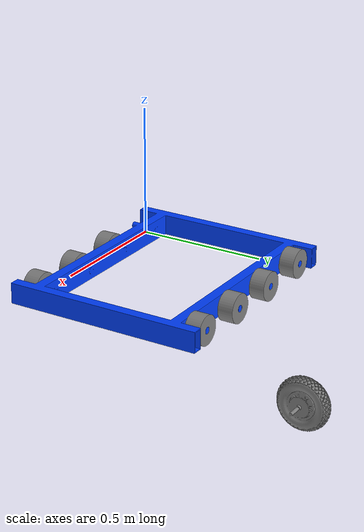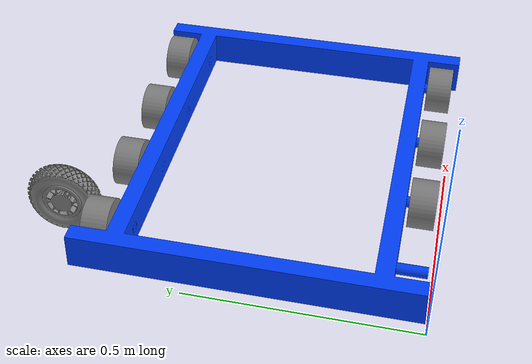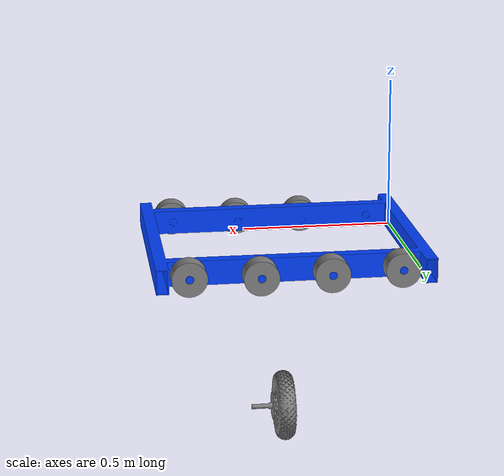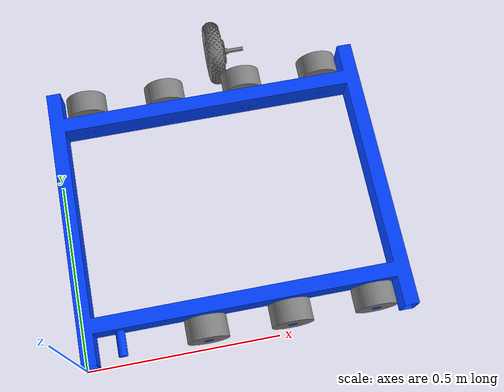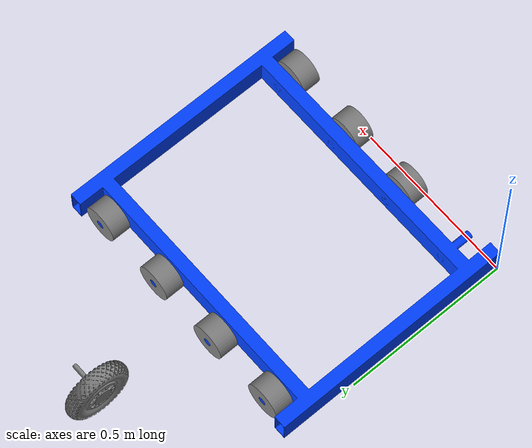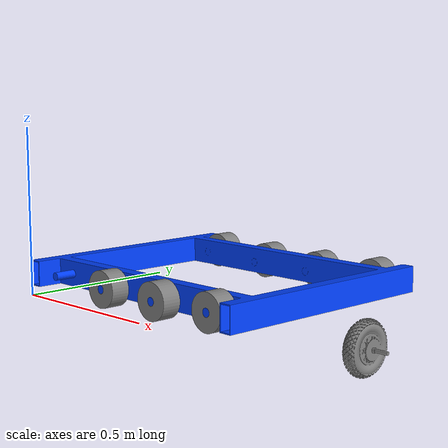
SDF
<?xml version="1.0" encoding="utf-8"?>
<sdf version="1.5">
  <model name="Tank2017">
    <pose>0 0 0.03 0 0 0</pose>
    <plugin name="clock" filename="libgz_clock.so">
      <topic>/gazebo/frc/time</topic>
    </plugin>
    <link name="Chassis">
      <gravity>1</gravity>
      <self_collide>0</self_collide>
      <pose>0.425449999999999 0.3683 0.0376566951243428 1.5707963267949 0 -1.5707963267949</pose>
      <must_be_base_link>1</must_be_base_link>
      <velocity_decay>
        <linear>0</linear>
        <angular>0</angular>
      </velocity_decay>
      <inertial>
        <mass>2.40817781994212</mass>
        <pose>0 0 0 0 0 0</pose>
        <inertia>
          <ixx>0.241291454428431</ixx>
          <ixy>7.55045169182483E-18</ixy>
          <ixz>4.33680868994202E-18</ixz>
          <iyy>0.396867274360816</iyy>
          <iyz>2.74353971615668E-18</iyz>
          <izz>0.158653242485737</izz>
        </inertia>
      </inertial>
      <collision name="Chassis_collision">
        <pose>-0.012550161129536 -0.451315668830974 -0.564278846984316 0 0 0</pose>
        <geometry>
          <mesh>
            <scale>1 1 1</scale>
            <uri>model://Tank2017/meshes/Chassis_col.STL</uri>
          </mesh>
        </geometry>
        <surface>
          <contact>
            <ode />
          </contact>
          <friction>
            <ode>
              <mu>0.5</mu>
            </ode>
          </friction>
        </surface>
      </collision>
      <visual name="Chassis_visual">
        <pose>-0.012550161129536 -0.451315668830974 -0.564278846984316 0 0 0</pose>
        <material>
          <ambient>0 0.250980392156863 1 1</ambient>
          <diffuse>0 0.250980392156863 1 1</diffuse>
        </material>
        <geometry>
          <mesh>
            <scale>1 1 1</scale>
            <uri>model://Tank2017/meshes/Chassis.STL</uri>
          </mesh>
        </geometry>
      </visual>
      <sensor name="ChassisCamera" type="camera">
        <visualize>1</visualize>
        <always_on>1</always_on>
        <pose>0 0.1 -0.406399999999999 -1.57 1.57 0.0</pose>
        <update_rate>30.0</update_rate>
        <camera name="Chassiscamera">
          <horizontal_fov>1.0471975511966</horizontal_fov>
          <image>
            <width>320</width>
            <height>240</height>
          </image>
          <clip>
            <near>0.1</near>
            <far>100</far>
          </clip>
          <save enabled="true">
              <path>/tmp/driver-camera</path>
          </save>
        </camera>
      </sensor>
    </link>
    <link name="L1Wheel">
      <gravity>1</gravity>
      <self_collide>0</self_collide>
      <pose>0.1016 0.0412750000000001 0.0381 1.5707963267949 0 -1.5707963267949</pose>
      <must_be_base_link>0</must_be_base_link>
      <velocity_decay>
        <linear>0</linear>
        <angular>0</angular>
      </velocity_decay>
      <inertial>
        <mass>0.494101547094075</mass>
        <pose>0 0 0 0 0 0</pose>
        <inertia>
          <ixx>0.000759579992246719</ixx>
          <ixy>1.64529823070963E-36</ixy>
          <ixz>1.37155809984153E-20</ixz>
          <iyy>0.00051427301114409</iyy>
          <iyz>1.78378623796855E-38</iyz>
          <izz>0.00051427301114409</izz>
        </inertia>
      </inertial>
      <collision name="L1Wheel_collision">
        <pose>-0.339575161129536 -0.451758973706632 -0.888128846984316 0 0 0</pose>
        <geometry>
          <mesh>
            <scale>1 1 1</scale>
            <uri>model://Tank2017/meshes/L1Wheel_col.STL</uri>
          </mesh>
        </geometry>
        <surface>
          <friction>
            <ode>
              <mu>0.5</mu>
              <fdir1>1 0 0</fdir1>
            </ode>
          </friction>
		  <contact>
			<ode>
			  <max_vel>100</max_vel>
			  <soft_cfm>0.8</soft_cfm>
			  <soft_erp>0.8</soft_erp>
			  <kd>100</kd>
			  <kp>10000</kp>
			  <min_depth>0.002</min_depth>
			</ode>
		  </contact>
        </surface>
      </collision>
      <visual name="L1Wheel_visual">
        <pose>-0.339575161129536 -0.451758973706632 -0.888128846984316 0 0 0</pose>
        <material>
          <ambient>0.501960784313725 0.501960784313725 0.501960784313725 1</ambient>
          <diffuse>0.501960784313725 0.501960784313725 0.501960784313725 1</diffuse>
        </material>
        <geometry>
          <mesh>
            <scale>1 1 1</scale>
            <uri>model://Tank2017/meshes/L1Wheel.STL</uri>
          </mesh>
        </geometry>
      </visual>
    </link>
    <joint name="Chassis-L1Wheel" type="revolute">
      <parent>Chassis</parent>
      <child>L1Wheel</child>
      <pose>3.33066907387547E-16 0 -2.22044604925031E-16 0 0 0</pose>
      <axis>
        <xyz>1 0 0</xyz>
        <dynamics>
          <damping>1</damping>
          <friction>1</friction>
        </dynamics>
        <limit>
          <effort>100</effort>
        </limit>
      </axis>
    </joint>
    <link name="L2Wheel">
      <gravity>1</gravity>
      <self_collide>0</self_collide>
      <pose>0.3175 0.0412750000000001 0.0317499999999999 1.5707963267949 0 -1.5707963267949</pose>
      <must_be_base_link>0</must_be_base_link>
      <velocity_decay>
        <linear>0</linear>
        <angular>0</angular>
      </velocity_decay>
      <inertial>
        <mass>0.494101547094075</mass>
        <pose>0 0 0 0 0 0</pose>
        <inertia>
          <ixx>0.000759579992246719</ixx>
          <ixy>1.64529823070963E-36</ixy>
          <ixz>1.37155809984153E-20</ixz>
          <iyy>0.00051427301114409</iyy>
          <iyz>1.78378623796855E-38</iyz>
          <izz>0.00051427301114409</izz>
        </inertia>
      </inertial>
      <collision name="L2Wheel_collision">
        <pose>-0.339575161129536 -0.445408973706631 -0.672228846984316 0 0 0</pose>
        <geometry>
          <mesh>
            <scale>1 1 1</scale>
            <uri>model://Tank2017/meshes/L2Wheel_col.STL</uri>
          </mesh>
        </geometry>
        <surface>
          <friction>
            <ode>
              <mu>0.5</mu>
              <fdir1>1 0 0</fdir1>
            </ode>
          </friction>
		  <contact>
			<ode>
			  <max_vel>100</max_vel>
			  <soft_cfm>0.8</soft_cfm>
			  <soft_erp>0.8</soft_erp>
			  <kd>100</kd>
			  <kp>10000</kp>
			  <min_depth>0.002</min_depth>
			</ode>
		  </contact>
        </surface>
      </collision>
      <visual name="L2Wheel_visual">
        <pose>-0.339575161129536 -0.445408973706631 -0.672228846984316 0 0 0</pose>
        <material>
          <ambient>0.501960784313725 0.501960784313725 0.501960784313725 1</ambient>
          <diffuse>0.501960784313725 0.501960784313725 0.501960784313725 1</diffuse>
        </material>
        <geometry>
          <mesh>
            <scale>1 1 1</scale>
            <uri>model://Tank2017/meshes/L2Wheel.STL</uri>
          </mesh>
        </geometry>
      </visual>
    </link>
    <joint name="Chassis-L2Wheel" type="revolute">
      <parent>Chassis</parent>
      <child>L2Wheel</child>
      <pose>3.33066907387547E-16 5.55111512312578E-17 0 0 0 0</pose>
      <axis>
        <xyz>1 0 0</xyz>
        <dynamics>
          <damping>1</damping>
          <friction>1</friction>
        </dynamics>
        <limit>
          <effort>100</effort>
        </limit>
      </axis>
    </joint>
    <link name="L3Wheel">
      <gravity>1</gravity>
      <self_collide>0</self_collide>
      <pose>0.5334 0.0412750000000002 0.0317499999999998 1.5707963267949 0 -1.5707963267949</pose>
      <must_be_base_link>0</must_be_base_link>
      <velocity_decay>
        <linear>0</linear>
        <angular>0</angular>
      </velocity_decay>
      <inertial>
        <mass>0.494101547094075</mass>
        <pose>0 0 0 0 0 0</pose>
        <inertia>
          <ixx>0.000759579992246719</ixx>
          <ixy>1.64529823070963E-36</ixy>
          <ixz>1.37155809984153E-20</ixz>
          <iyy>0.00051427301114409</iyy>
          <iyz>1.78378623796855E-38</iyz>
          <izz>0.00051427301114409</izz>
        </inertia>
      </inertial>
      <collision name="L3Wheel_collision">
        <pose>-0.339575161129536 -0.445408973706631 -0.456328846984316 0 0 0</pose>
        <geometry>
          <mesh>
            <scale>1 1 1</scale>
            <uri>model://Tank2017/meshes/L3Wheel_col.STL</uri>
          </mesh>
        </geometry>
        <surface>
          <friction>
            <ode>
              <mu>0.5</mu>
              <fdir1>1 0 0</fdir1>
            </ode>
           </friction>
		  <contact>
			<ode>
			  <max_vel>100</max_vel>
			  <soft_cfm>0.8</soft_cfm>
			  <soft_erp>0.8</soft_erp>
			  <kd>100</kd>
			  <kp>10000</kp>
			  <min_depth>0.002</min_depth>
			</ode>
		  </contact>
        </surface>
      </collision>
      <visual name="L3Wheel_visual">
        <pose>-0.339575161129536 -0.445408973706631 -0.456328846984316 0 0 0</pose>
        <material>
          <ambient>0.501960784313725 0.501960784313725 0.501960784313725 1</ambient>
          <diffuse>0.501960784313725 0.501960784313725 0.501960784313725 1</diffuse>
        </material>
        <geometry>
          <mesh>
            <scale>1 1 1</scale>
            <uri>model://Tank2017/meshes/L3Wheel.STL</uri>
          </mesh>
        </geometry>
      </visual>
    </link>
    <joint name="Chassis-L3Wheel" type="revolute">
      <parent>Chassis</parent>
      <child>L3Wheel</child>
      <pose>3.33066907387547E-16 5.55111512312578E-17 -1.11022302462516E-16 0 0 0</pose>
      <axis>
        <xyz>1 0 0</xyz>
        <dynamics>
          <damping>1</damping>
          <friction>1</friction>
        </dynamics>
        <limit>
          <effort>100</effort>
        </limit>
      </axis>
    </joint>
    <link name="L4Wheel">
      <gravity>1</gravity>
      <self_collide>0</self_collide>
      <pose>0.7493 0.0412750000000002 0.0380999999999998 1.5707963267949 0 -1.5707963267949</pose>
      <must_be_base_link>0</must_be_base_link>
      <velocity_decay>
        <linear>0</linear>
        <angular>0</angular>
      </velocity_decay>
      <inertial>
        <mass>0.494101547094075</mass>
        <pose>0 0 0 0 0 0</pose>
        <inertia>
          <ixx>0.000759579992246719</ixx>
          <ixy>3.87913135771356E-35</ixy>
          <ixz>1.37155809984153E-20</ixz>
          <iyy>0.00051427301114409</iyy>
          <iyz>5.47393247872099E-35</iyz>
          <izz>0.00051427301114409</izz>
        </inertia>
      </inertial>
      <collision name="L4Wheel_collision">
        <pose>-0.339575161129536 -0.451758973706631 -0.240428846984316 0 0 0</pose>
        <geometry>
          <mesh>
            <scale>1 1 1</scale>
            <uri>model://Tank2017/meshes/L4Wheel_col.STL</uri>
          </mesh>
        </geometry>
        <surface>
          <friction>
            <ode>
              <mu>0.5</mu>
              <fdir1>1 0 0</fdir1>
            </ode>
          </friction>
		  <contact>
			<ode>
			  <max_vel>100</max_vel>
			  <soft_cfm>0.8</soft_cfm>
			  <soft_erp>0.8</soft_erp>
			  <kd>100</kd>
			  <kp>10000</kp>
			  <min_depth>0.002</min_depth>
			</ode>
		  </contact>
        </surface>
      </collision>
      <visual name="L4Wheel_visual">
        <pose>-0.339575161129536 -0.451758973706631 -0.240428846984316 0 0 0</pose>
        <material>
          <ambient>0.501960784313725 0.501960784313725 0.501960784313725 1</ambient>
          <diffuse>0.501960784313725 0.501960784313725 0.501960784313725 1</diffuse>
        </material>
        <geometry>
          <mesh>
            <scale>1 1 1</scale>
            <uri>model://Tank2017/meshes/L4Wheel.STL</uri>
          </mesh>
        </geometry>
      </visual>
    </link>
    <joint name="Chassis-L4Wheel" type="revolute">
      <parent>Chassis</parent>
      <child>L4Wheel</child>
      <pose>3.33066907387547E-16 0 2.77555756156289E-17 0 0 0</pose>
      <axis>
        <xyz>1 0 0</xyz>
        <dynamics>
          <damping>1</damping>
          <friction>1</friction>
        </dynamics>
        <limit>
          <effort>100</effort>
        </limit>
      </axis>
    </joint>
    <link name="R1Wheel">
      <gravity>1</gravity>
      <self_collide>0</self_collide>
      <pose>0.1016 0.695325 0.0381 1.5707963267949 0 -1.5707963267949</pose>
      <must_be_base_link>0</must_be_base_link>
      <velocity_decay>
        <linear>0</linear>
        <angular>0</angular>
      </velocity_decay>
      <inertial>
        <mass>0.494101547094075</mass>
        <pose>0 0 0 0 0 0</pose>
        <inertia>
          <ixx>0.000759579992246719</ixx>
          <ixy>1.64529823070963E-36</ixy>
          <ixz>1.37155809984153E-20</ixz>
          <iyy>0.00051427301114409</iyy>
          <iyz>1.78378623796855E-38</iyz>
          <izz>0.00051427301114409</izz>
        </inertia>
      </inertial>
      <collision name="R1Wheel_collision">
        <pose>0.314474838870464 -0.451758973706632 -0.888128846984315 0 0 0</pose>
        <geometry>
          <mesh>
            <scale>1 1 1</scale>
            <uri>model://Tank2017/meshes/R1Wheel_col.STL</uri>
          </mesh>
        </geometry>
        <surface>
          <friction>
            <ode>
              <mu>0.5</mu>
              <fdir1>1 0 0</fdir1>
            </ode>
          </friction>
		  <contact>
			<ode>
			  <max_vel>100</max_vel>
			  <soft_cfm>0.8</soft_cfm>
			  <soft_erp>0.8</soft_erp>
			  <kd>100</kd>
			  <kp>10000</kp>
			  <min_depth>0.002</min_depth>
			</ode>
		  </contact>
        </surface>
      </collision>
      <visual name="R1Wheel_visual">
        <pose>0.314474838870464 -0.451758973706632 -0.888128846984315 0 0 0</pose>
        <material>
          <ambient>0.501960784313725 0.501960784313725 0.501960784313725 1</ambient>
          <diffuse>0.501960784313725 0.501960784313725 0.501960784313725 1</diffuse>
        </material>
        <geometry>
          <mesh>
            <scale>1 1 1</scale>
            <uri>model://Tank2017/meshes/R1Wheel.STL</uri>
          </mesh>
        </geometry>
      </visual>
    </link>
    <joint name="Chassis-R1Wheel" type="revolute">
      <parent>Chassis</parent>
      <child>R1Wheel</child>
      <pose>2.77555756156289E-16 0 0 0 0 0</pose>
      <axis>
        <xyz>1 0 0</xyz>
        <dynamics>
          <damping>1</damping>
          <friction>1</friction>
        </dynamics>
        <limit>
          <effort>100</effort>
        </limit>
      </axis>
    </joint>
    <link name="R2Wheel">
      <gravity>1</gravity>
      <self_collide>0</self_collide>
      <pose>0.3175 0.695325 0.0317499999999999 1.5707963267949 0 -1.5707963267949</pose>
      <must_be_base_link>0</must_be_base_link>
      <velocity_decay>
        <linear>0</linear>
        <angular>0</angular>
      </velocity_decay>
      <inertial>
        <mass>0.494101547094075</mass>
        <pose>0 0 0 0 0 0</pose>
        <inertia>
          <ixx>0.000759579992246719</ixx>
          <ixy>1.64529823070963E-36</ixy>
          <ixz>1.37155809984153E-20</ixz>
          <iyy>0.00051427301114409</iyy>
          <iyz>1.78378623796825E-38</iyz>
          <izz>0.00051427301114409</izz>
        </inertia>
      </inertial>
      <collision name="R2Wheel_collision">
        <pose>0.314474838870464 -0.445408973706632 -0.672228846984316 0 0 0</pose>
        <geometry>
          <mesh>
            <scale>1 1 1</scale>
            <uri>model://Tank2017/meshes/R2Wheel_col.STL</uri>
          </mesh>
        </geometry>
        <surface>
          <friction>
            <ode>
              <mu>0.5</mu>
              <fdir1>1 0 0</fdir1>
            </ode>
          </friction>
		  <contact>
			<ode>
			  <max_vel>100</max_vel>
			  <soft_cfm>0.8</soft_cfm>
			  <soft_erp>0.8</soft_erp>
			  <kd>100</kd>
			  <kp>10000</kp>
			  <min_depth>0.002</min_depth>
			</ode>
		  </contact>
        </surface>
      </collision>
      <visual name="R2Wheel_visual">
        <pose>0.314474838870464 -0.445408973706632 -0.672228846984316 0 0 0</pose>
        <material>
          <ambient>0.501960784313725 0.501960784313725 0.501960784313725 1</ambient>
          <diffuse>0.501960784313725 0.501960784313725 0.501960784313725 1</diffuse>
        </material>
        <geometry>
          <mesh>
            <scale>1 1 1</scale>
            <uri>model://Tank2017/meshes/R2Wheel.STL</uri>
          </mesh>
        </geometry>
      </visual>
    </link>
    <joint name="Chassis-R2Wheel" type="revolute">
      <parent>Chassis</parent>
      <child>R2Wheel</child>
      <pose>3.33066907387547E-16 0 0 0 0 0</pose>
      <axis>
        <xyz>1 0 0</xyz>
        <dynamics>
          <damping>1</damping>
          <friction>1</friction>
        </dynamics>
        <limit>
          <effort>100</effort>
        </limit>
      </axis>
    </joint>
    <link name="R3Wheel">
      <gravity>1</gravity>
      <self_collide>0</self_collide>
      <pose>0.5334 0.695325 0.0317499999999998 1.5707963267949 0 -1.5707963267949</pose>
      <must_be_base_link>0</must_be_base_link>
      <velocity_decay>
        <linear>0</linear>
        <angular>0</angular>
      </velocity_decay>
      <inertial>
        <mass>0.494101547094075</mass>
        <pose>0 0 0 0 0 0</pose>
        <inertia>
          <ixx>0.000759579992246719</ixx>
          <ixy>1.64529823070963E-36</ixy>
          <ixz>1.37155809984153E-20</ixz>
          <iyy>0.00051427301114409</iyy>
          <iyz>1.78378623796825E-38</iyz>
          <izz>0.00051427301114409</izz>
        </inertia>
      </inertial>
      <collision name="R3Wheel_collision">
        <pose>0.314474838870464 -0.445408973706631 -0.456328846984316 0 0 0</pose>
        <geometry>
          <mesh>
            <scale>1 1 1</scale>
            <uri>model://Tank2017/meshes/R3Wheel_col.STL</uri>
          </mesh>
        </geometry>
        <surface>
          <friction>
            <ode>
              <mu>0.5</mu>
              <fdir1>1 0 0</fdir1>
            </ode>
          </friction>
		  <contact>
			<ode>
			  <max_vel>100</max_vel>
			  <soft_cfm>0.8</soft_cfm>
			  <soft_erp>0.8</soft_erp>
			  <kd>100</kd>
			  <kp>10000</kp>
			  <min_depth>0.002</min_depth>
			</ode>
		  </contact>
        </surface>
      </collision>
      <visual name="R3Wheel_visual">
        <pose>0.314474838870464 -0.445408973706631 -0.456328846984316 0 0 0</pose>
        <material>
          <ambient>0.501960784313725 0.501960784313725 0.501960784313725 1</ambient>
          <diffuse>0.501960784313725 0.501960784313725 0.501960784313725 1</diffuse>
        </material>
        <geometry>
          <mesh>
            <scale>1 1 1</scale>
            <uri>model://Tank2017/meshes/R3Wheel.STL</uri>
          </mesh>
        </geometry>
      </visual>
    </link>
    <joint name="Chassis-R3Wheel" type="revolute">
      <parent>Chassis</parent>
      <child>R3Wheel</child>
      <pose>2.77555756156289E-16 5.55111512312578E-17 0 0 0 0</pose>
      <axis>
        <xyz>1 0 0</xyz>
        <dynamics>
          <damping>1</damping>
          <friction>1</friction>
        </dynamics>
        <limit>
          <effort>100</effort>
        </limit>
      </axis>
    </joint>
    <link name="R4Wheel">
      <gravity>1</gravity>
      <self_collide>0</self_collide>
      <pose>0.7493 0.695325 0.0380999999999998 1.5707963267949 0 -1.5707963267949</pose>
      <must_be_base_link>0</must_be_base_link>
      <velocity_decay>
        <linear>0</linear>
        <angular>0</angular>
      </velocity_decay>
      <inertial>
        <mass>0.494101547094075</mass>
        <pose>0 0 0 0 0 0</pose>
        <inertia>
          <ixx>0.000759579992246719</ixx>
          <ixy>3.87913135771356E-35</ixy>
          <ixz>1.37155809984153E-20</ixz>
          <iyy>0.00051427301114409</iyy>
          <iyz>5.47393247872099E-35</iyz>
          <izz>0.00051427301114409</izz>
        </inertia>
      </inertial>
      <collision name="R4Wheel_collision">
        <pose>0.314474838870464 -0.451758973706631 -0.240428846984316 0 0 0</pose>
        <geometry>
          <mesh>
            <scale>1 1 1</scale>
            <uri>model://Tank2017/meshes/R4Wheel_col.STL</uri>
          </mesh>
        </geometry>
        <surface>
         <friction>
            <ode>
              <mu>0.5</mu>
              <fdir1>1 0 0</fdir1>
            </ode>
          </friction>
		  <contact>
			<ode>
			  <max_vel>100</max_vel>
			  <soft_cfm>0.8</soft_cfm>
			  <soft_erp>0.8</soft_erp>
			  <kd>100</kd>
			  <kp>10000</kp>
			  <min_depth>0.002</min_depth>
			</ode>
		  </contact>
        </surface>
      </collision>
      <visual name="R4Wheel_visual">
        <pose>0.314474838870464 -0.451758973706631 -0.240428846984316 0 0 0</pose>
        <material>
          <ambient>0.501960784313725 0.501960784313725 0.501960784313725 1</ambient>
          <diffuse>0.501960784313725 0.501960784313725 0.501960784313725 1</diffuse>
        </material>
        <geometry>
          <mesh>
            <scale>1 1 1</scale>
            <uri>model://Tank2017/meshes/R4Wheel.STL</uri>
          </mesh>
        </geometry>
      </visual>
    </link>
    <joint name="Chassis-R4Wheel" type="revolute">
      <parent>Chassis</parent>
      <child>R4Wheel</child>
      <pose>2.22044604925031E-16 0 2.77555756156289E-17 0 0 0</pose>
      <axis>
        <xyz>1 0 0</xyz>
        <dynamics>
          <damping>1</damping>
          <friction>1</friction>
        </dynamics>
        <limit>
          <effort>100</effort>
        </limit>
      </axis>
    </joint>
    <plugin name="Chassis_gyro" filename="libgyro.so">
      <link>Chassis</link>
      <topic>/gazebo/frc/simulator/analog/3</topic>
      <units>degrees</units>
      <axis>yaw</axis>
    </plugin>
    <plugin name="Chassis-L1Wheel_motor" filename="libgz_dc_motor.so">
      <joint>Chassis-L1Wheel</joint>
      <topic>/gazebo/frc/simulator/pwm/2</topic>
      <multiplier>50</multiplier>
    </plugin>
    <plugin name="Chassis-L2Wheel_motor" filename="libgz_dc_motor.so">
      <joint>Chassis-L2Wheel</joint>
      <topic>/gazebo/frc/simulator/pwm/2</topic>
      <multiplier>50</multiplier>
    </plugin>
    <plugin name="Chassis-L2Wheel_encoder" filename="libgz_encoder.so">
      <joint>Chassis-L2Wheel</joint>
      <topic>/gazebo/frc/simulator/dio/3/4</topic>
      <units>degrees</units>
    </plugin>
    <plugin name="Chassis-L3Wheel_motor" filename="libgz_dc_motor.so">
      <joint>Chassis-L3Wheel</joint>
      <topic>/gazebo/frc/simulator/pwm/2</topic>
      <multiplier>50</multiplier>
    </plugin>
    <plugin name="Chassis-L4Wheel_motor" filename="libgz_dc_motor.so">
      <joint>Chassis-L4Wheel</joint>
      <topic>/gazebo/frc/simulator/pwm/2</topic>
      <multiplier>50</multiplier>
    </plugin>
    <plugin name="Chassis-R1Wheel_motor" filename="libgz_dc_motor.so">
      <joint>Chassis-R1Wheel</joint>
      <topic>/gazebo/frc/simulator/pwm/4</topic>
      <multiplier>50</multiplier>
    </plugin>
    <plugin name="Chassis-R2Wheel_motor" filename="libgz_dc_motor.so">
      <joint>Chassis-R2Wheel</joint>
      <topic>/gazebo/frc/simulator/pwm/4</topic>
      <multiplier>50</multiplier>
    </plugin>
    <plugin name="Chassis-R2Wheel_encoder" filename="libgz_encoder.so">
      <joint>Chassis-R2Wheel</joint>
      <topic>/gazebo/frc/simulator/dio/7/8</topic>
      <units>degrees</units>
    </plugin>
    <plugin name="Chassis-R3Wheel_motor" filename="libgz_dc_motor.so">
      <joint>Chassis-R3Wheel</joint>
      <topic>/gazebo/frc/simulator/pwm/4</topic>
      <multiplier>50</multiplier>
    </plugin>
    <plugin name="Chassis-R4Wheel_motor" filename="libgz_dc_motor.so">
      <joint>Chassis-R4Wheel</joint>
      <topic>/gazebo/frc/simulator/pwm/4</topic>
      <multiplier>50</multiplier>
    </plugin>
  </model>
</sdf>
